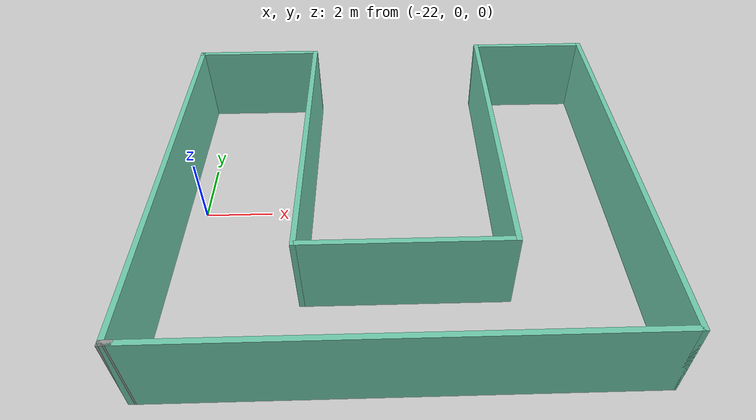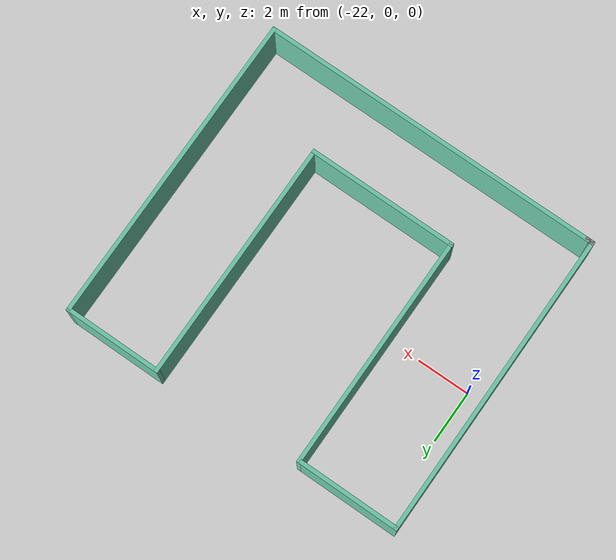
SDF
<?xml version='1.0'?>
<sdf version='1.6'>
  <model name='mybuilding'>
    <pose frame=''>-16.1171 -0.313613 0 0 -0 0</pose>
    <link name='Wall_1'>
      <collision name='Wall_1_Collision'>
        <geometry>
          <box>
            <size>13 0.15 2.5</size>
          </box>
        </geometry>
        <pose frame=''>0 0 1.25 0 -0 0</pose>
      </collision>
      <visual name='Wall_1_Visual'>
        <pose frame=''>0 0 1.25 0 -0 0</pose>
        <geometry>
          <box>
            <size>13 0.15 2.5</size>
          </box>
        </geometry>
        <material>
          <script>
            <uri>file://media/materials/scripts/gazebo.material</uri>
            <name>Gazebo/Grey</name>
          </script>
          <ambient>0.435294 0.796078 0.67451 1</ambient>
        </material>
        <meta>
          <layer>0</layer>
        </meta>
      </visual>
      <pose frame=''>0.099999 -5.925 0 0 -0 0</pose>
    </link>
    <link name='Wall_10'>
      <collision name='Wall_10_Collision'>
        <geometry>
          <box>
            <size>11.75 0.15 2.5</size>
          </box>
        </geometry>
        <pose frame=''>0 0 1.25 0 -0 0</pose>
      </collision>
      <visual name='Wall_10_Visual'>
        <pose frame=''>0 0 1.25 0 -0 0</pose>
        <geometry>
          <box>
            <size>11.75 0.15 2.5</size>
          </box>
        </geometry>
        <material>
          <script>
            <uri>file://media/materials/scripts/gazebo.material</uri>
            <name>Gazebo/Grey</name>
          </script>
          <ambient>0.435294 0.796078 0.67451 1</ambient>
        </material>
        <meta>
          <layer>0</layer>
        </meta>
      </visual>
      <pose frame=''>-6.525 -0.125 0 0 0 -1.5708</pose>
    </link>
    <link name='Wall_11'>
      <collision name='Wall_11_Collision'>
        <geometry>
          <box>
            <size>0.35 0.15 2.5</size>
          </box>
        </geometry>
        <pose frame=''>0 0 1.25 0 -0 0</pose>
      </collision>
      <visual name='Wall_11_Visual'>
        <pose frame=''>0 0 1.25 0 -0 0</pose>
        <geometry>
          <box>
            <size>0.35 0.15 2.5</size>
          </box>
        </geometry>
        <material>
          <script>
            <uri>file://media/materials/scripts/gazebo.material</uri>
            <name>Gazebo/Grey</name>
          </script>
          <ambient>1 1 1 1</ambient>
        </material>
        <meta>
          <layer>0</layer>
        </meta>
      </visual>
      <pose frame=''>-6.425 -5.925 0 0 -0 0</pose>
    </link>
    <link name='Wall_12'>
      <collision name='Wall_12_Collision'>
        <geometry>
          <box>
            <size>0.35 0.15 2.5</size>
          </box>
        </geometry>
        <pose frame=''>0 0 1.25 0 -0 0</pose>
      </collision>
      <visual name='Wall_12_Visual'>
        <pose frame=''>0 0 1.25 0 -0 0</pose>
        <geometry>
          <box>
            <size>0.35 0.15 2.5</size>
          </box>
        </geometry>
        <material>
          <script>
            <uri>file://media/materials/scripts/gazebo.material</uri>
            <name>Gazebo/Grey</name>
          </script>
          <ambient>1 1 1 1</ambient>
        </material>
        <meta>
          <layer>0</layer>
        </meta>
      </visual>
      <pose frame=''>-6.425 -5.925 0 0 -0 3.14159</pose>
    </link>
    <link name='Wall_2'>
      <collision name='Wall_2_Collision'>
        <geometry>
          <box>
            <size>12 0.15 2.5</size>
          </box>
        </geometry>
        <pose frame=''>0 0 1.25 0 -0 0</pose>
      </collision>
      <visual name='Wall_2_Visual'>
        <pose frame=''>0 0 1.25 0 -0 0</pose>
        <geometry>
          <box>
            <size>12 0.15 2.5</size>
          </box>
        </geometry>
        <material>
          <script>
            <uri>file://media/materials/scripts/gazebo.material</uri>
            <name>Gazebo/Grey</name>
          </script>
          <ambient>0.435294 0.796078 0.67451 1</ambient>
        </material>
        <meta>
          <layer>0</layer>
        </meta>
      </visual>
      <pose frame=''>6.525 0 0 0 -0 1.5708</pose>
    </link>
    <link name='Wall_3'>
      <collision name='Wall_3_Collision'>
        <geometry>
          <box>
            <size>3.75 0.15 2.5</size>
          </box>
        </geometry>
        <pose frame=''>0 0 1.25 0 -0 0</pose>
      </collision>
      <visual name='Wall_3_Visual'>
        <pose frame=''>0 0 1.25 0 -0 0</pose>
        <geometry>
          <box>
            <size>3.75 0.15 2.5</size>
          </box>
        </geometry>
        <material>
          <script>
            <uri>file://media/materials/scripts/gazebo.material</uri>
            <name>Gazebo/Grey</name>
          </script>
          <ambient>0.435294 0.796078 0.67451 1</ambient>
        </material>
        <meta>
          <layer>0</layer>
        </meta>
      </visual>
      <pose frame=''>4.725 5.925 0 0 -0 3.14159</pose>
    </link>
    <link name='Wall_4'>
      <collision name='Wall_4_Collision'>
        <geometry>
          <box>
            <size>9.25 0.15 2.5</size>
          </box>
        </geometry>
        <pose frame=''>0 0 1.25 0 -0 0</pose>
      </collision>
      <visual name='Wall_4_Visual'>
        <pose frame=''>0 0 1.25 0 -0 0</pose>
        <geometry>
          <box>
            <size>9.25 0.15 2.5</size>
          </box>
        </geometry>
        <material>
          <script>
            <uri>file://media/materials/scripts/gazebo.material</uri>
            <name>Gazebo/Grey</name>
          </script>
          <ambient>0.435294 0.796078 0.67451 1</ambient>
        </material>
        <meta>
          <layer>0</layer>
        </meta>
      </visual>
      <pose frame=''>2.925 1.375 0 0 0 -1.5708</pose>
    </link>
    <link name='Wall_5'>
      <collision name='Wall_5_Collision'>
        <geometry>
          <box>
            <size>5.75 0.15 2.5</size>
          </box>
        </geometry>
        <pose frame=''>0 0 1.25 0 -0 0</pose>
      </collision>
      <visual name='Wall_5_Visual'>
        <pose frame=''>0 0 1.25 0 -0 0</pose>
        <geometry>
          <box>
            <size>5.75 0.15 2.5</size>
          </box>
        </geometry>
        <material>
          <script>
            <uri>file://media/materials/scripts/gazebo.material</uri>
            <name>Gazebo/Grey</name>
          </script>
          <ambient>0.435294 0.796078 0.67451 1</ambient>
        </material>
        <meta>
          <layer>0</layer>
        </meta>
      </visual>
      <pose frame=''>0.125 -3.175 0 0 -0 3.14159</pose>
    </link>
    <link name='Wall_6'>
      <collision name='Wall_6_Collision'>
        <geometry>
          <box>
            <size>9 0.15 2.5</size>
          </box>
        </geometry>
        <pose frame=''>0 0 1.25 0 -0 0</pose>
      </collision>
      <visual name='Wall_6_Visual'>
        <pose frame=''>0 0 1.25 0 -0 0</pose>
        <geometry>
          <box>
            <size>9 0.15 2.5</size>
          </box>
        </geometry>
        <material>
          <script>
            <uri>file://media/materials/scripts/gazebo.material</uri>
            <name>Gazebo/Grey</name>
          </script>
          <ambient>0.435294 0.796078 0.67451 1</ambient>
        </material>
        <meta>
          <layer>0</layer>
        </meta>
      </visual>
      <pose frame=''>-2.675 1.25 0 0 -0 1.5708</pose>
    </link>
    <link name='Wall_7'>
      <collision name='Wall_7_Collision'>
        <geometry>
          <box>
            <size>4 0.15 2.5</size>
          </box>
        </geometry>
        <pose frame=''>0 0 1.25 0 -0 0</pose>
      </collision>
      <visual name='Wall_7_Visual'>
        <pose frame=''>0 0 1.25 0 -0 0</pose>
        <geometry>
          <box>
            <size>4 0.15 2.5</size>
          </box>
        </geometry>
        <material>
          <script>
            <uri>file://media/materials/scripts/gazebo.material</uri>
            <name>Gazebo/Grey</name>
          </script>
          <ambient>0.435294 0.796078 0.67451 1</ambient>
        </material>
        <meta>
          <layer>0</layer>
        </meta>
      </visual>
      <pose frame=''>-4.6 5.675 0 0 -0 3.14159</pose>
    </link>
    <static>1</static>
  </model>
</sdf>
